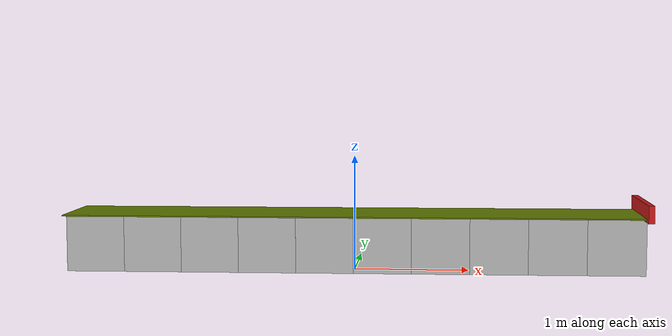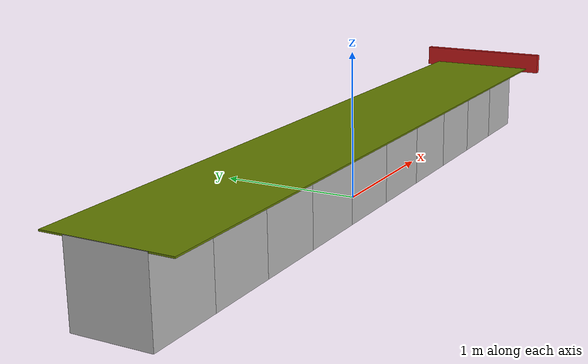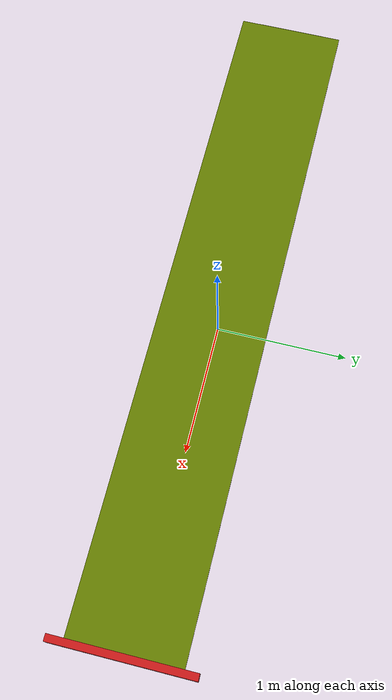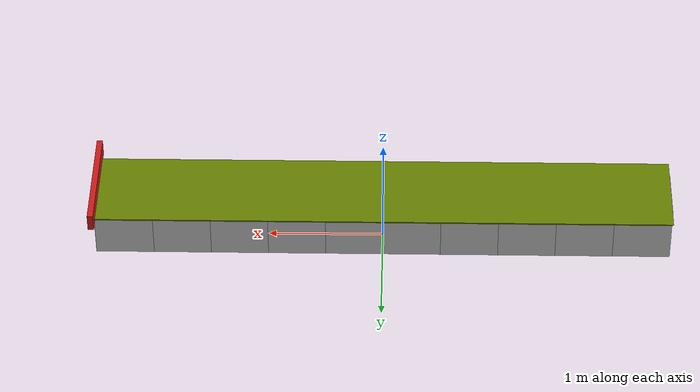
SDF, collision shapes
<?xml version="1.0" ?>
<!--
Model for the ROS Simulation Interfaces Demo

This model can be merge-included into the jetty demo world (jetty.sdf) or the small sim_ifaces_demo.sdf file

Partially generated using Gemini 2.5 Pro
-->
<sdf version="1.11">
    <model name="conveyor_belt">

        <model name="belt_surface">
            <pose>0 0 0.5  0 0 0</pose>
            <link name="base">
            <collision name="collision">
                <geometry>
                <box>
                    <size>5.0 0.8 0.01</size>
                </box>
                </geometry>
                <surface>
                <friction>
                    <ode>
                    <mu>1.0</mu>
                    <mu2>1.0</mu2>
                    </ode>
                </friction>
                </surface>
            </collision>
            <visual name="visual">
                <geometry>
                <box>
                    <size>5.0 0.8 0.01</size>
                </box>
                </geometry>
                <material>
                <diffuse>0.4 0.5 0.0</diffuse>
                <emissive>0.1 0.1 0.1</emissive>
                </material>
            </visual>
            </link>

            <joint name="belt_to_world" type="fixed">
                <parent>world</parent>
                <child>base</child>
            </joint>

            <plugin filename="gz-sim-track-controller-system" name="gz::sim::systems::TrackController">
                <link>base</link>
                <min_velocity>-2.0</min_velocity>
                <max_velocity>2.0</max_velocity>
            </plugin>
        </model>

        <model name="conveyor_stopper">
          <pose>2.5 0 0.55 0 0 0</pose> <link name="stopper_link">
            <collision name="collision">
              <geometry>
                <box>
                  <size>0.05 1.0 0.15</size>
                </box>
              </geometry>
              <surface>
                <friction>
                  <ode>
                    <mu>1.0</mu>
                    <mu2>1.0</mu2>
                  </ode>
                </friction>
              </surface>
            </collision>
            <visual name="visual">
              <geometry>
                <box>
                  <size>0.05 1.0 0.15</size>
                </box>
              </geometry>
              <material>
                <diffuse>0.8 0.1 0.1 1.0</diffuse>
                <ambient>0.8 0.1 0.1 1.0</ambient>
              </material>
            </visual>
          </link>

          <joint name="stopper_to_world" type="fixed">
            <parent>world</parent>
            <child>stopper_link</child>
          </joint>
        </model>

        <include>
            <name>conveyor_0</name>
            <uri>https://fuel.gazebosim.org/1.0/Open-RMF/models/conveyor_block</uri>
            <pose>-2.25 0 0 0 0 1.5707</pose>
            <static>true</static>
        </include>
        <include>
            <name>conveyor_1</name>
            <uri>https://fuel.gazebosim.org/1.0/Open-RMF/models/conveyor_block</uri>
            <pose>-1.75 0 0 0 0 1.5707</pose>
            <static>true</static>
        </include>
        <include>
            <name>conveyor_2</name>
            <uri>https://fuel.gazebosim.org/1.0/Open-RMF/models/conveyor_block</uri>
            <pose>-1.25 0 0 0 0 1.5707</pose>
            <static>true</static>
        </include>
        <include>
            <name>conveyor_3</name>
            <uri>https://fuel.gazebosim.org/1.0/Open-RMF/models/conveyor_block</uri>
            <pose>-0.75 0 0 0 0 1.5707</pose>
            <static>true</static>
        </include>
        <include>
            <name>conveyor_4</name>
            <uri>https://fuel.gazebosim.org/1.0/Open-RMF/models/conveyor_block</uri>
            <pose>-0.25 0 0 0 0 1.5707</pose>
            <static>true</static>
        </include>
        <include>
            <name>conveyor_5</name>
            <uri>https://fuel.gazebosim.org/1.0/Open-RMF/models/conveyor_block</uri>
            <pose>0.25 0 0 0 0 1.5707</pose>
            <static>true</static>
        </include>
        <include>
            <name>conveyor_6</name>
            <uri>https://fuel.gazebosim.org/1.0/Open-RMF/models/conveyor_block</uri>
            <pose>0.75 0 0 0 0 1.5707</pose>
            <static>true</static>
        </include>
        <include>
            <name>conveyor_7</name>
            <uri>https://fuel.gazebosim.org/1.0/Open-RMF/models/conveyor_block</uri>
            <pose>1.25 0 0 0 0 1.5707</pose>
            <static>true</static>
        </include>
        <include>
            <name>conveyor_8</name>
            <uri>https://fuel.gazebosim.org/1.0/Open-RMF/models/conveyor_block</uri>
            <pose>1.75 0 0 0 0 1.5707</pose>
            <static>true</static>
        </include>
        <include>
            <name>conveyor_9</name>
            <uri>https://fuel.gazebosim.org/1.0/Open-RMF/models/conveyor_block</uri>
            <pose>2.25 0 0 0 0 1.5707</pose>
            <static>true</static>
        </include>

    </model>
</sdf>

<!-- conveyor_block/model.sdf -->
<sdf version="1.6">
  <model name="conveyor_block">
    <link name="conveyor_block_link">
      <visual name="conveyor_block_visual">
        <geometry>
          <mesh>
            <uri>meshes/conveyor_block_visual.glb</uri>
            <scale>2 20 2</scale>
          </mesh>
        </geometry>
      </visual>
      <collision name="conveyor_block_collider_box">
        <pose>0.0 0.0 0.251262 0.0 0.0 0.0</pose>
        <geometry>
          <box>
            <size>0.501994 0.505 0.504526</size>
          </box>
        </geometry>
      </collision>
    </link>
  </model>
</sdf>
